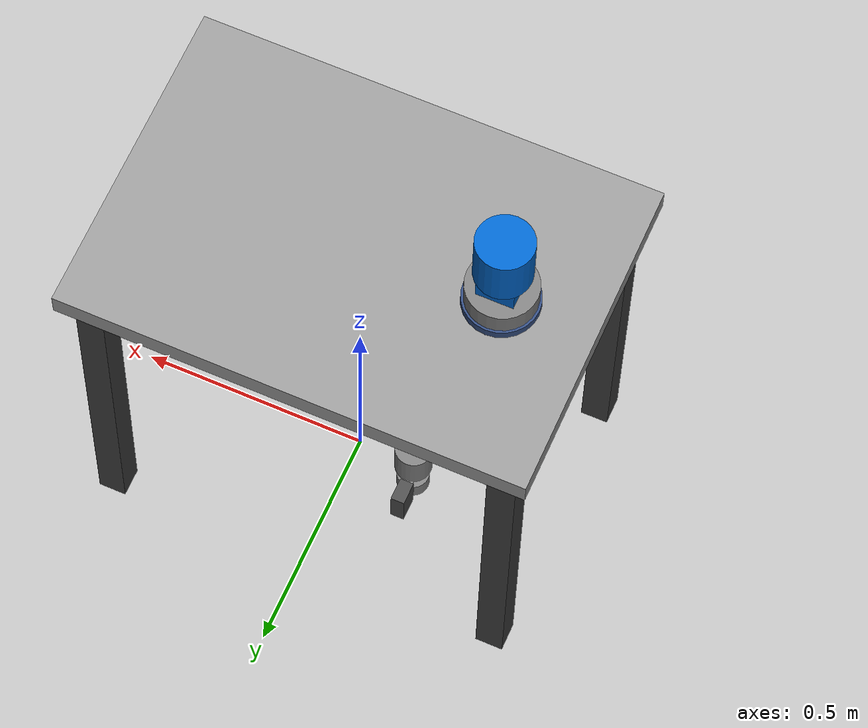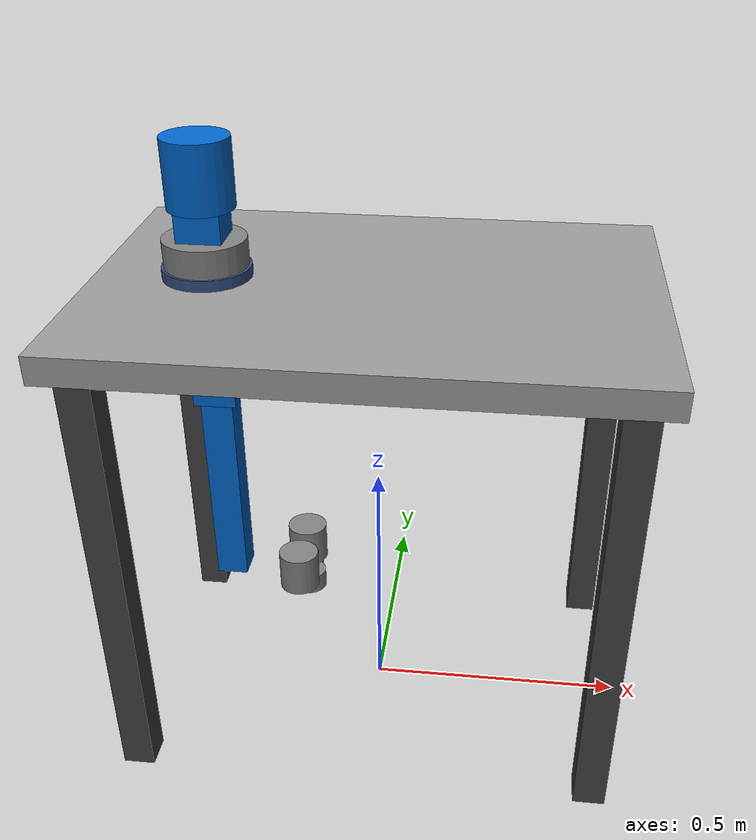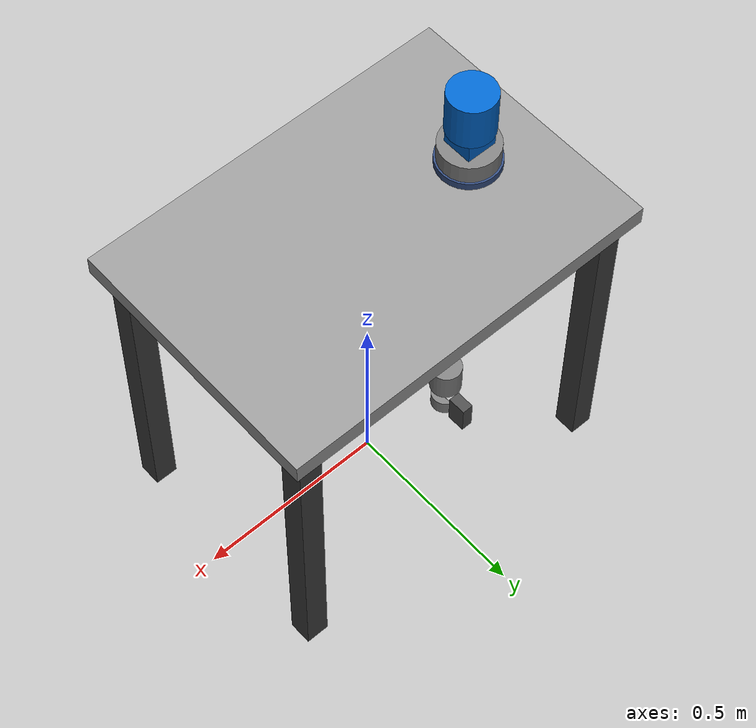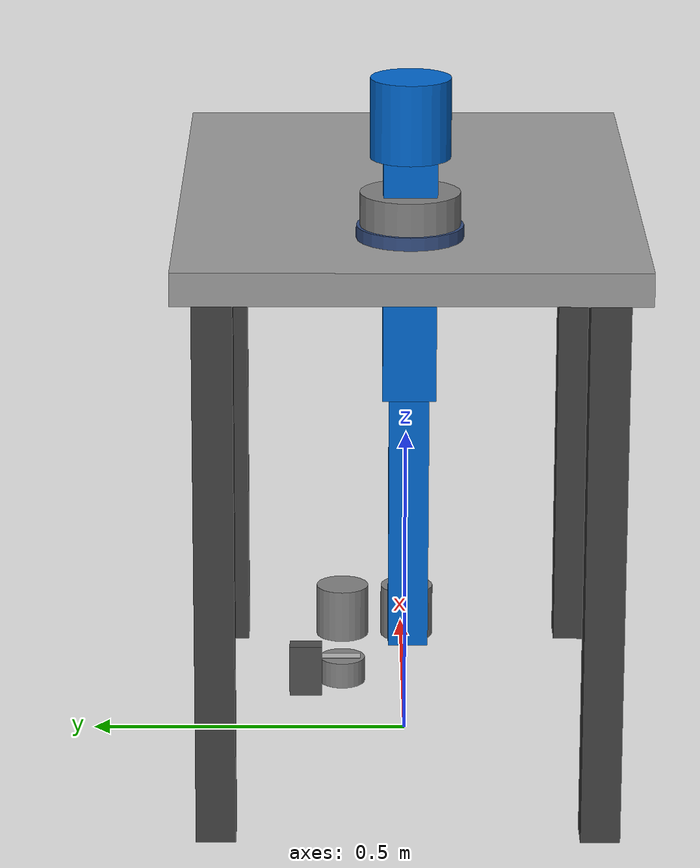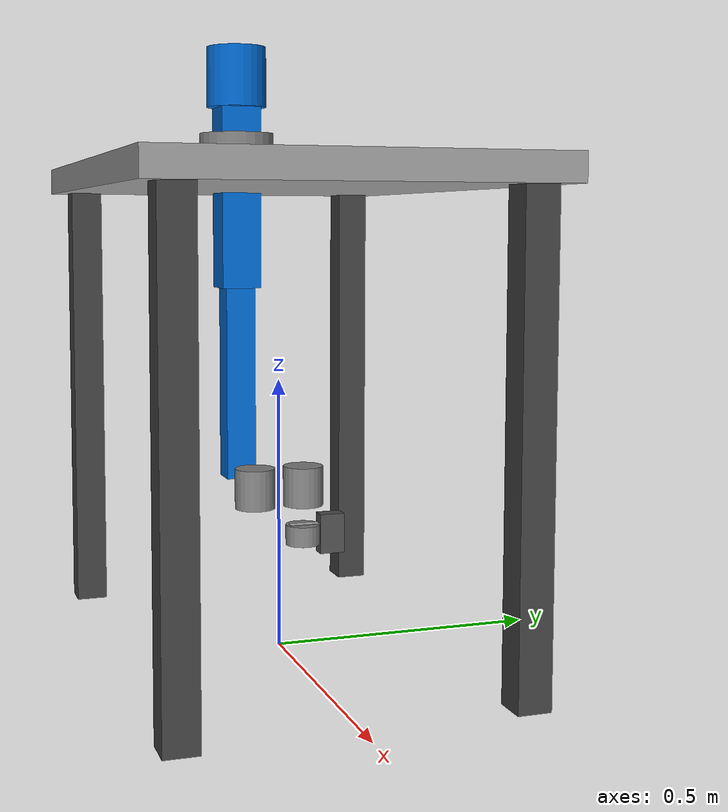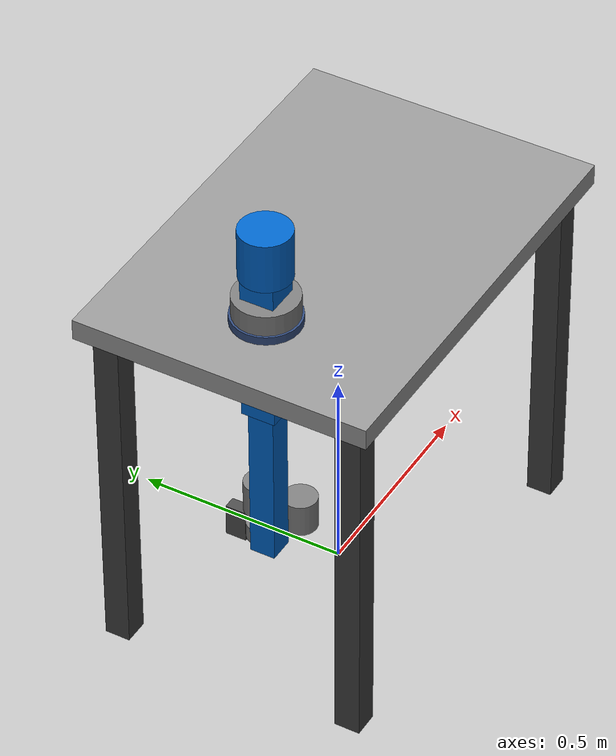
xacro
<?xml version="1.0"?>
<robot xmlns:xacro="http://www.ros.org/wiki/xacro" name="pick_place_standalone">
  <!--
    Standalone scene for testing without ur_description package.
    Uses a simplified robot representation.
    For full demo with actual UR robot, use pick_place_scene.urdf.xacro
  -->

  <!-- Include gripper and table -->
  <xacro:include filename="$(find ur_pick_place)/urdf/parallel_gripper.urdf.xacro"/>
  <xacro:include filename="$(find ur_pick_place)/urdf/industrial_table.urdf.xacro"/>

  <!-- World frame -->
  <link name="world"/>

  <!-- Industrial table -->
  <xacro:industrial_table parent="world" prefix=""/>

  <!-- Simplified robot base on mount -->
  <joint name="robot_base_joint" type="fixed">
    <parent link="robot_mount"/>
    <child link="base_link"/>
    <origin xyz="0 0 0.02" rpy="0 0 0"/>
  </joint>

  <link name="base_link">
    <visual>
      <geometry>
        <cylinder radius="0.075" length="0.05"/>
      </geometry>
      <origin xyz="0 0 0.025" rpy="0 0 0"/>
      <material name="ur_gray">
        <color rgba="0.5 0.5 0.5 1.0"/>
      </material>
    </visual>
    <collision>
      <geometry>
        <cylinder radius="0.075" length="0.05"/>
      </geometry>
      <origin xyz="0 0 0.025" rpy="0 0 0"/>
    </collision>
  </link>

  <!-- Simplified arm representation -->
  <joint name="shoulder_pan_joint" type="revolute">
    <parent link="base_link"/>
    <child link="shoulder_link"/>
    <origin xyz="0 0 0.1625" rpy="0 0 0"/>
    <axis xyz="0 0 1"/>
    <limit lower="-6.28" upper="6.28" effort="150" velocity="3.14"/>
  </joint>

  <link name="shoulder_link">
    <visual>
      <geometry>
        <cylinder radius="0.06" length="0.12"/>
      </geometry>
      <origin xyz="0 0 0" rpy="0 0 0"/>
      <material name="ur_blue">
        <color rgba="0.0 0.4 0.8 1.0"/>
      </material>
    </visual>
  </link>

  <joint name="shoulder_lift_joint" type="revolute">
    <parent link="shoulder_link"/>
    <child link="upper_arm_link"/>
    <origin xyz="0 0 0" rpy="0 1.5708 0"/>
    <axis xyz="0 1 0"/>
    <limit lower="-6.28" upper="6.28" effort="150" velocity="3.14"/>
  </joint>

  <link name="upper_arm_link">
    <visual>
      <geometry>
        <box size="0.425 0.08 0.08"/>
      </geometry>
      <origin xyz="0.2125 0 0" rpy="0 0 0"/>
      <material name="ur_blue"/>
    </visual>
  </link>

  <joint name="elbow_joint" type="revolute">
    <parent link="upper_arm_link"/>
    <child link="forearm_link"/>
    <origin xyz="0.425 0 0" rpy="0 0 0"/>
    <axis xyz="0 1 0"/>
    <limit lower="-3.14" upper="3.14" effort="150" velocity="3.14"/>
  </joint>

  <link name="forearm_link">
    <visual>
      <geometry>
        <box size="0.3922 0.06 0.06"/>
      </geometry>
      <origin xyz="0.1961 0 0" rpy="0 0 0"/>
      <material name="ur_blue"/>
    </visual>
  </link>

  <joint name="wrist_1_joint" type="revolute">
    <parent link="forearm_link"/>
    <child link="wrist_1_link"/>
    <origin xyz="0.3922 0 0.1333" rpy="0 1.5708 0"/>
    <axis xyz="0 1 0"/>
    <limit lower="-6.28" upper="6.28" effort="28" velocity="3.14"/>
  </joint>

  <link name="wrist_1_link">
    <visual>
      <geometry>
        <cylinder radius="0.04" length="0.08"/>
      </geometry>
      <material name="ur_gray"/>
    </visual>
  </link>

  <joint name="wrist_2_joint" type="revolute">
    <parent link="wrist_1_link"/>
    <child link="wrist_2_link"/>
    <origin xyz="0 0.0997 0" rpy="0 0 0"/>
    <axis xyz="0 0 1"/>
    <limit lower="-6.28" upper="6.28" effort="28" velocity="3.14"/>
  </joint>

  <link name="wrist_2_link">
    <visual>
      <geometry>
        <cylinder radius="0.04" length="0.08"/>
      </geometry>
      <material name="ur_gray"/>
    </visual>
  </link>

  <joint name="wrist_3_joint" type="revolute">
    <parent link="wrist_2_link"/>
    <child link="wrist_3_link"/>
    <origin xyz="0 0 0.0996" rpy="0 0 0"/>
    <axis xyz="0 1 0"/>
    <limit lower="-6.28" upper="6.28" effort="28" velocity="3.14"/>
  </joint>

  <link name="wrist_3_link">
    <visual>
      <geometry>
        <cylinder radius="0.035" length="0.04"/>
      </geometry>
      <material name="ur_gray"/>
    </visual>
  </link>

  <!-- Tool flange -->
  <joint name="tool0_joint" type="fixed">
    <parent link="wrist_3_link"/>
    <child link="tool0"/>
    <origin xyz="0 0.0823 0" rpy="-1.5708 0 0"/>
  </joint>

  <link name="tool0"/>

  <!-- Parallel gripper attached to tool0 -->
  <xacro:parallel_gripper parent="tool0" prefix=""/>

</robot>

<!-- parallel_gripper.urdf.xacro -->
<robot xmlns:xacro="http://www.ros.org/wiki/xacro" name="parallel_gripper">

  <!-- Standalone mode argument -->
  <xacro:arg name="standalone" default="false"/>

  <!-- Gripper parameters -->
  <xacro:property name="gripper_base_length" value="0.05"/>
  <xacro:property name="gripper_base_width" value="0.08"/>
  <xacro:property name="gripper_base_height" value="0.03"/>
  <xacro:property name="finger_length" value="0.06"/>
  <xacro:property name="finger_width" value="0.012"/>
  <xacro:property name="finger_height" value="0.02"/>
  <xacro:property name="max_opening" value="0.08"/>

  <!-- Materials -->
  <material name="gripper_dark_gray">
    <color rgba="0.3 0.3 0.3 1.0"/>
  </material>

  <material name="gripper_silver">
    <color rgba="0.7 0.7 0.7 1.0"/>
  </material>

  <xacro:macro name="parallel_gripper" params="parent prefix:=''">

    <!-- Gripper base attached to parent (tool0) -->
    <!-- Rotated so gripper fingers point along tool0 Z-axis (outward from flange) -->
    <joint name="${prefix}gripper_base_joint" type="fixed">
      <origin xyz="0 0 0" rpy="0 ${pi/2} 0"/>
      <parent link="${parent}"/>
      <child link="${prefix}gripper_base_link"/>
    </joint>

    <link name="${prefix}gripper_base_link">
      <visual>
        <geometry>
          <box size="${gripper_base_length} ${gripper_base_width} ${gripper_base_height}"/>
        </geometry>
        <origin xyz="${gripper_base_length/2} 0 0" rpy="0 0 0"/>
        <material name="gripper_dark_gray"/>
      </visual>
      <collision>
        <geometry>
          <box size="${gripper_base_length} ${gripper_base_width} ${gripper_base_height}"/>
        </geometry>
        <origin xyz="${gripper_base_length/2} 0 0" rpy="0 0 0"/>
      </collision>
      <inertial>
        <mass value="0.5"/>
        <origin xyz="${gripper_base_length/2} 0 0" rpy="0 0 0"/>
        <inertia ixx="0.001" ixy="0" ixz="0" iyy="0.001" iyz="0" izz="0.001"/>
      </inertial>
    </link>

    <!-- Left finger (fixed joint for visualization, semi-closed position) -->
    <joint name="${prefix}gripper_left_finger_joint" type="fixed">
      <parent link="${prefix}gripper_base_link"/>
      <child link="${prefix}gripper_left_finger"/>
      <origin xyz="${gripper_base_length} 0.015 0" rpy="0 0 0"/>
    </joint>

    <link name="${prefix}gripper_left_finger">
      <visual>
        <geometry>
          <box size="${finger_length} ${finger_width} ${finger_height}"/>
        </geometry>
        <origin xyz="${finger_length/2} 0 0" rpy="0 0 0"/>
        <material name="gripper_silver"/>
      </visual>
      <collision>
        <geometry>
          <box size="${finger_length} ${finger_width} ${finger_height}"/>
        </geometry>
        <origin xyz="${finger_length/2} 0 0" rpy="0 0 0"/>
      </collision>
      <inertial>
        <mass value="0.1"/>
        <origin xyz="${finger_length/2} 0 0" rpy="0 0 0"/>
        <inertia ixx="0.0001" ixy="0" ixz="0" iyy="0.0001" iyz="0" izz="0.0001"/>
      </inertial>
    </link>

    <!-- Right finger (fixed joint for visualization, semi-closed position) -->
    <joint name="${prefix}gripper_right_finger_joint" type="fixed">
      <parent link="${prefix}gripper_base_link"/>
      <child link="${prefix}gripper_right_finger"/>
      <origin xyz="${gripper_base_length} -0.015 0" rpy="0 0 0"/>
    </joint>

    <link name="${prefix}gripper_right_finger">
      <visual>
        <geometry>
          <box size="${finger_length} ${finger_width} ${finger_height}"/>
        </geometry>
        <origin xyz="${finger_length/2} 0 0" rpy="0 0 0"/>
        <material name="gripper_silver"/>
      </visual>
      <collision>
        <geometry>
          <box size="${finger_length} ${finger_width} ${finger_height}"/>
        </geometry>
        <origin xyz="${finger_length/2} 0 0" rpy="0 0 0"/>
      </collision>
      <inertial>
        <mass value="0.1"/>
        <origin xyz="${finger_length/2} 0 0" rpy="0 0 0"/>
        <inertia ixx="0.0001" ixy="0" ixz="0" iyy="0.0001" iyz="0" izz="0.0001"/>
      </inertial>
    </link>

    <!-- TCP (Tool Center Point) at fingertip center -->
    <joint name="${prefix}gripper_tcp_joint" type="fixed">
      <parent link="${prefix}gripper_base_link"/>
      <child link="${prefix}gripper_tcp"/>
      <origin xyz="${gripper_base_length + finger_length} 0 0" rpy="0 0 0"/>
    </joint>

    <link name="${prefix}gripper_tcp">
      <visual>
        <geometry>
          <sphere radius="0.005"/>
        </geometry>
        <material name="gripper_silver"/>
      </visual>
    </link>

  </xacro:macro>

  <!-- Standalone instantiation (attaches to gripper_mount frame) -->
  <xacro:if value="$(arg standalone)">
    <link name="gripper_mount"/>
    <xacro:parallel_gripper parent="gripper_mount" prefix=""/>
  </xacro:if>

</robot>

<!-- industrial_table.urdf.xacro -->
<robot xmlns:xacro="http://www.ros.org/wiki/xacro" name="industrial_table">

  <!-- Standalone mode argument -->
  <xacro:arg name="standalone" default="false"/>

  <!-- Table parameters -->
  <xacro:property name="table_length" value="1.0"/>
  <xacro:property name="table_width" value="0.7"/>
  <xacro:property name="table_height" value="0.9"/>
  <xacro:property name="table_thickness" value="0.05"/>
  <xacro:property name="leg_size" value="0.06"/>

  <!-- Materials -->
  <material name="table_gray">
    <color rgba="0.6 0.6 0.6 1.0"/>
  </material>

  <material name="table_dark">
    <color rgba="0.25 0.25 0.25 1.0"/>
  </material>

  <material name="mount_blue">
    <color rgba="0.2 0.3 0.5 1.0"/>
  </material>

  <xacro:macro name="industrial_table" params="parent prefix:=''">

    <!-- Table base joint connecting to world/parent -->
    <joint name="${prefix}table_base_joint" type="fixed">
      <origin xyz="0 0 0" rpy="0 0 0"/>
      <parent link="${parent}"/>
      <child link="${prefix}table_base_link"/>
    </joint>

    <link name="${prefix}table_base_link"/>

    <!-- Table top surface -->
    <joint name="${prefix}table_top_joint" type="fixed">
      <parent link="${prefix}table_base_link"/>
      <child link="${prefix}table_top"/>
      <origin xyz="0 0 ${table_height - table_thickness/2}" rpy="0 0 0"/>
    </joint>

    <link name="${prefix}table_top">
      <visual>
        <geometry>
          <box size="${table_length} ${table_width} ${table_thickness}"/>
        </geometry>
        <material name="table_gray"/>
      </visual>
      <collision>
        <geometry>
          <box size="${table_length} ${table_width} ${table_thickness}"/>
        </geometry>
      </collision>
      <inertial>
        <mass value="50.0"/>
        <inertia ixx="5.0" ixy="0" ixz="0" iyy="5.0" iyz="0" izz="5.0"/>
      </inertial>
    </link>

    <!-- Table leg macro -->
    <xacro:macro name="table_leg" params="name x y">
      <joint name="${prefix}${name}_joint" type="fixed">
        <parent link="${prefix}table_base_link"/>
        <child link="${prefix}${name}"/>
        <origin xyz="${x} ${y} ${(table_height - table_thickness)/2}" rpy="0 0 0"/>
      </joint>
      <link name="${prefix}${name}">
        <visual>
          <geometry>
            <box size="${leg_size} ${leg_size} ${table_height - table_thickness}"/>
          </geometry>
          <material name="table_dark"/>
        </visual>
        <collision>
          <geometry>
            <box size="${leg_size} ${leg_size} ${table_height - table_thickness}"/>
          </geometry>
        </collision>
        <inertial>
          <mass value="2.0"/>
          <inertia ixx="0.1" ixy="0" ixz="0" iyy="0.1" iyz="0" izz="0.1"/>
        </inertial>
      </link>
    </xacro:macro>

    <!-- Four table legs -->
    <xacro:table_leg name="leg_front_left"
                     x="${table_length/2 - leg_size}"
                     y="${table_width/2 - leg_size}"/>
    <xacro:table_leg name="leg_front_right"
                     x="${table_length/2 - leg_size}"
                     y="${-table_width/2 + leg_size}"/>
    <xacro:table_leg name="leg_back_left"
                     x="${-table_length/2 + leg_size}"
                     y="${table_width/2 - leg_size}"/>
    <xacro:table_leg name="leg_back_right"
                     x="${-table_length/2 + leg_size}"
                     y="${-table_width/2 + leg_size}"/>

    <!-- Robot mounting plate (center-back of table) -->
    <joint name="${prefix}robot_mount_joint" type="fixed">
      <parent link="${prefix}table_top"/>
      <child link="${prefix}robot_mount"/>
      <origin xyz="${-table_length/2 + 0.2} 0 ${table_thickness/2}" rpy="0 0 0"/>
    </joint>

    <link name="${prefix}robot_mount">
      <visual>
        <geometry>
          <cylinder radius="0.08" length="0.02"/>
        </geometry>
        <origin xyz="0 0 0.01" rpy="0 0 0"/>
        <material name="mount_blue"/>
      </visual>
      <collision>
        <geometry>
          <cylinder radius="0.08" length="0.02"/>
        </geometry>
        <origin xyz="0 0 0.01" rpy="0 0 0"/>
      </collision>
      <inertial>
        <mass value="1.0"/>
        <inertia ixx="0.01" ixy="0" ixz="0" iyy="0.01" iyz="0" izz="0.01"/>
      </inertial>
    </link>

  </xacro:macro>

  <!-- Standalone instantiation -->
  <xacro:if value="$(arg standalone)">
    <link name="world"/>
    <xacro:industrial_table parent="world" prefix=""/>
  </xacro:if>

</robot>
